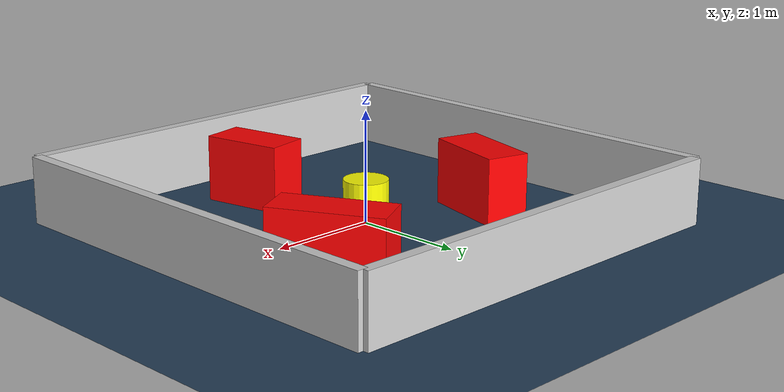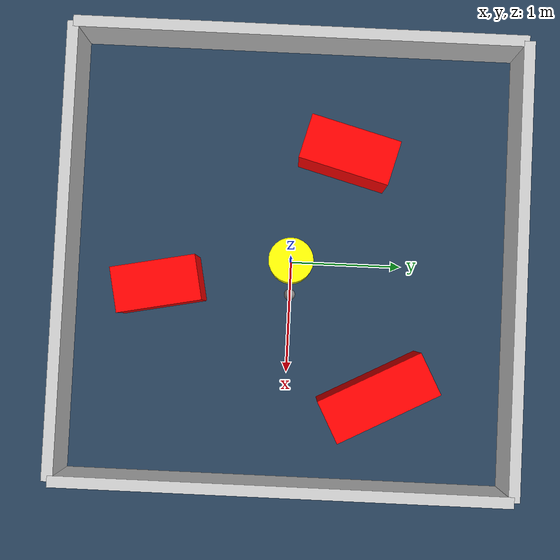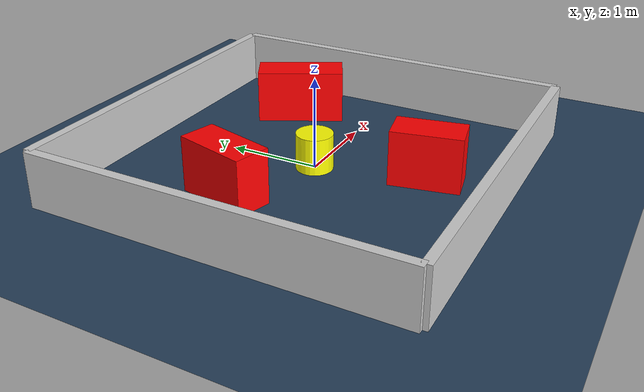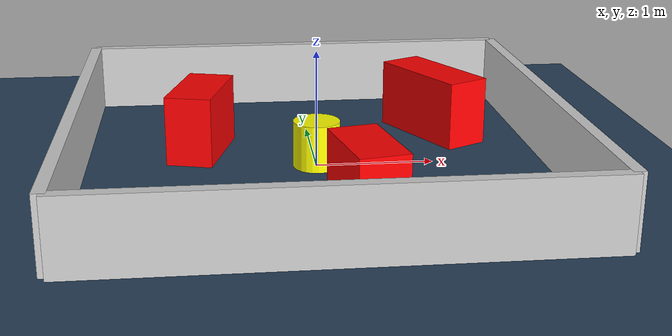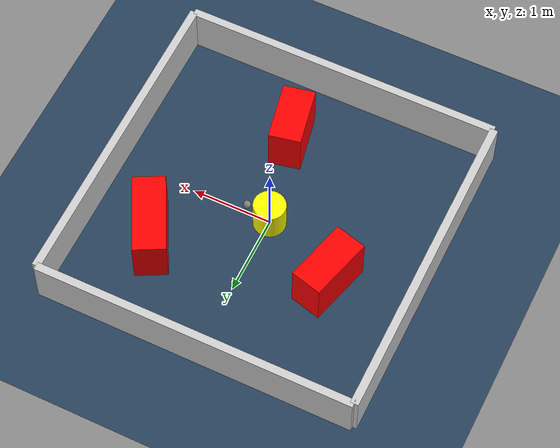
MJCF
<?xml version="1.0" ?>
<mujoco model="generated_environment">
  <option timestep="0.01" integrator="RK4" cone="elliptic"/>
  <default>
    <geom density="1"/>
  </default>
  <asset>
    <texture builtin="gradient" height="3072" rgb1="0.3 0.5 0.7" rgb2="0 0 0" type="skybox" width="512"/>
    <texture builtin="checker" height="300" mark="edge" markrgb="0.8 0.8 0.8" name="groundplane" rgb1="0.2 0.3 0.4" rgb2="0.1 0.2 0.3" type="2d" width="300"/>
    <material name="groundplane" reflectance="0.2" texrepeat="5 5" texture="groundplane" texuniform="true"/>
    <material name="robot" rgba="0.0 1.0 0.0 1"/>
  </asset>
  <worldbody>
    <light dir="0 0 -1" directional="true" pos="0 0 1.5"/>
    <geom condim="4" friction="1.0 0.005 0.001" material="groundplane" name="floor" size="0 0 0.05" type="plane"/>
    <body name="walls">
      <geom name="wall_1" condim="4" pos="-2.0 0.0 0.3" rgba="0.800000011920929 0.800000011920929 0.800000011920929 1.0" size="0.05 2.0 0.3" type="box"/>
      <geom name="wall_2" condim="4" pos="2.0 0.0 0.3" rgba="0.800000011920929 0.800000011920929 0.800000011920929 1.0" size="0.05 2.0 0.3" type="box"/>
      <geom name="wall_3" condim="4" pos="0.0 -2.0 0.3" rgba="0.800000011920929 0.800000011920929 0.800000011920929 1.0" size="2.0 0.05 0.3" type="box"/>
      <geom name="wall_4" condim="4" pos="0.0 2.0 0.3" rgba="0.800000011920929 0.800000011920929 0.800000011920929 1.0" size="2.0 0.05 0.3" type="box"/>
    </body>
    <body name="robot">
      <joint name="joint_x" type="slide" pos="0 0 0" axis="1 0 0"/>
      <joint name="joint_y" type="slide" pos="0 0 0" axis="0 1 0"/>
      <geom name="robot" type="sphere" pos="0.3 0.0 0.2" size="0.05" mass="5." friction="1.0 0.005 0.0001" condim="4" rgba="0.5 0.5 0.5 1.0"/>
      <site name="sensor_ball"/>
    </body>
    <body name="obstacle_movable_1">
      <geom name="obstacle_movable_1" condim="4" pos="0.0 0.0 0.2" euler="0 0 0.0" friction="1.0 0.005 0.001" rgba="1.0 1.0 0.0 1.0" size="0.2 0.2 0.0" type="cylinder" mass="0.1"/>
      <joint type="free"/>
    </body>
    <body name="obstacle_2_static">
      <geom name="obstacle_2_static" condim="4" pos="0.26480295306376367 -1.1595608449184192 0.3" euler="0 0 281.31180629753896" friction="1.0 0.005 0.001" rgba="1 0 0 1" size="0.3724878730133126 0.2 0.3" type="box"/>
    </body>
    <body name="obstacle_3_static">
      <geom name="obstacle_3_static" condim="4" pos="1.16438913456604 0.8121253911686803 0.3" euler="0 0 297.65615085990106" friction="1.0 0.005 0.001" rgba="1 0 0 1" size="0.4945347179339269 0.2 0.3" type="box"/>
    </body>
    <body name="obstacle_4_static">
      <geom name="obstacle_4_static" condim="4" pos="-0.9759084385047985 0.46977977132792126 0.3" euler="0 0 254.90651629957696" friction="1.0 0.005 0.001" rgba="1 0 0 1" size="0.40627735031392864 0.2 0.3" type="box"/>
    </body>
  </worldbody>
  <actuator>
    <motor name="actuator_x" joint="joint_x" gear="1" ctrlrange="-1 1"/>
    <motor name="actuator_y" joint="joint_y" gear="1" ctrlrange="-1 1"/>
  </actuator>
</mujoco>
